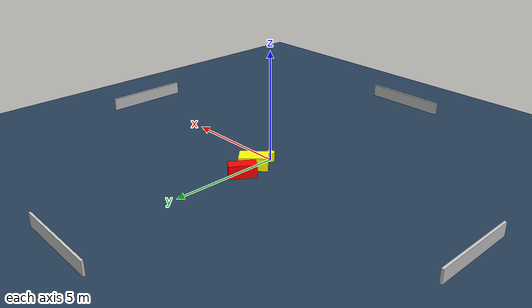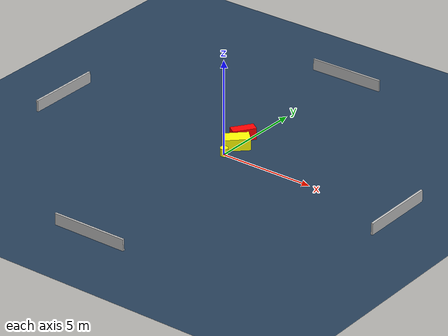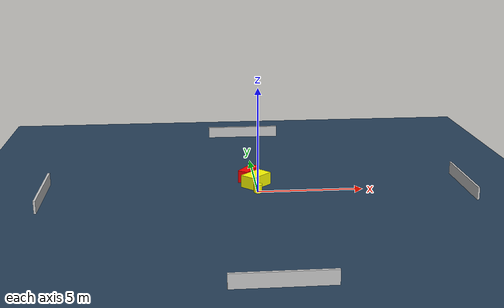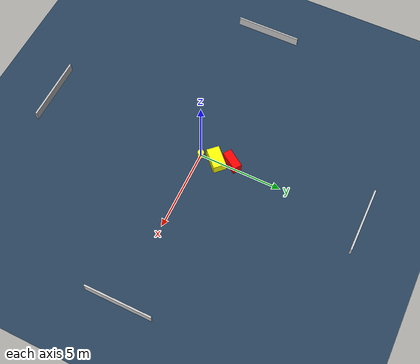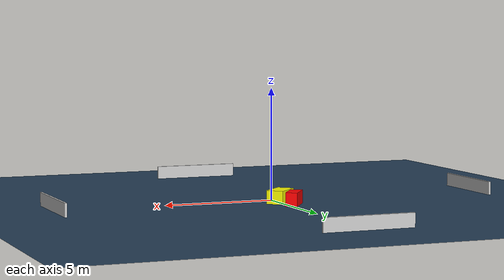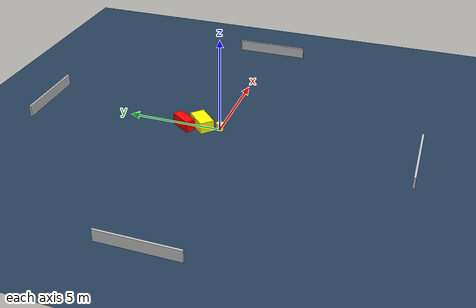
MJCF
<?xml version="1.0" ?>
<mujoco model="generated_environment">
  <option timestep="0.01" integrator="RK4" cone="elliptic"/>
  <default>
    <geom density="1"/>
  </default>
  <asset>
    <texture builtin="gradient" height="3072" name="skybox" rgb1="0.3 0.5 0.7" rgb2="0 0 0" type="skybox" width="512"/>
    <texture builtin="checker" height="300" name="groundplane" rgb1="0.2 0.3 0.4" rgb2="0.1 0.2 0.3" type="2d" width="300"/>
    <material name="groundplane" reflectance="0.2" texrepeat="5 5" texture="groundplane"/>
  </asset>
  <worldbody>
    <light dir="0 0 -1" directional="true" pos="0 0 1.5"/>
    <geom condim="3" friction="0.5 0.005 0.001" material="groundplane" name="floor" pos="0 0 0" size="0 0 0.05" type="plane"/>
    <body name="walls">
      <geom name="wall_1" condim="4" pos="-10.0 0.0 0.3" rgba="0.800000011920929 0.800000011920929 0.800000011920929 1.0" size="0.05 2.0 0.3" type="box"/>
      <geom name="wall_2" condim="4" pos="10.0 0.0 0.3" rgba="0.800000011920929 0.800000011920929 0.800000011920929 1.0" size="0.05 2.0 0.3" type="box"/>
      <geom name="wall_3" condim="4" pos="0.0 -10.0 0.3" rgba="0.800000011920929 0.800000011920929 0.800000011920929 1.0" size="2.0 0.05 0.3" type="box"/>
      <geom name="wall_4" condim="4" pos="0.0 10.0 0.3" rgba="0.800000011920929 0.800000011920929 0.800000011920929 1.0" size="2.0 0.05 0.3" type="box"/>
    </body>
    <body name="robot">
      <joint name="joint_x" type="slide" pos="0 0 0" axis="1 0 0"/>
      <joint name="joint_y" type="slide" pos="0 0 0" axis="0 1 0"/>
      <geom name="robot" type="cylinder" pos="0.0 0.0 0.2" size="0.2 0.2 0.0" mass="5.0" friction="1.0 0.005 0.0001" condim="4" rgba="1.0 1.0 0.0 1.0"/>
    </body>
    <body name="obstacle_1_movable">
      <geom name="obstacle_1_movable" condim="4" pos="-0.007579778691488554 0.9853662776555157 0.3" euler="0 0 134.52699750843647" friction="0.0 0.005 0.001" rgba="1.0 1.0 0.0 1.0" size="0.3834093444274428 0.6431535206203958 0.3" type="box" mass="0.1"/>
      <joint type="free"/>
    </body>
    <body name="obstacle_2_static">
      <geom name="obstacle_2_static" condim="4" pos="-0.286845666614203 1.8744736666217656 0.3" euler="0 0 145.80080161990426" friction="0.0 0.005 0.001" rgba="1.0 0.0 0.0 1.0" size="0.2635853100615201 0.6034028514046778 0.3" type="box"/>
    </body>
  </worldbody>
  <actuator>
    <motor name="actuator_x" joint="joint_x" gear="1" ctrlrange="-1 1"/>
    <motor name="actuator_y" joint="joint_y" gear="1" ctrlrange="-1 1"/>
  </actuator>
</mujoco>
